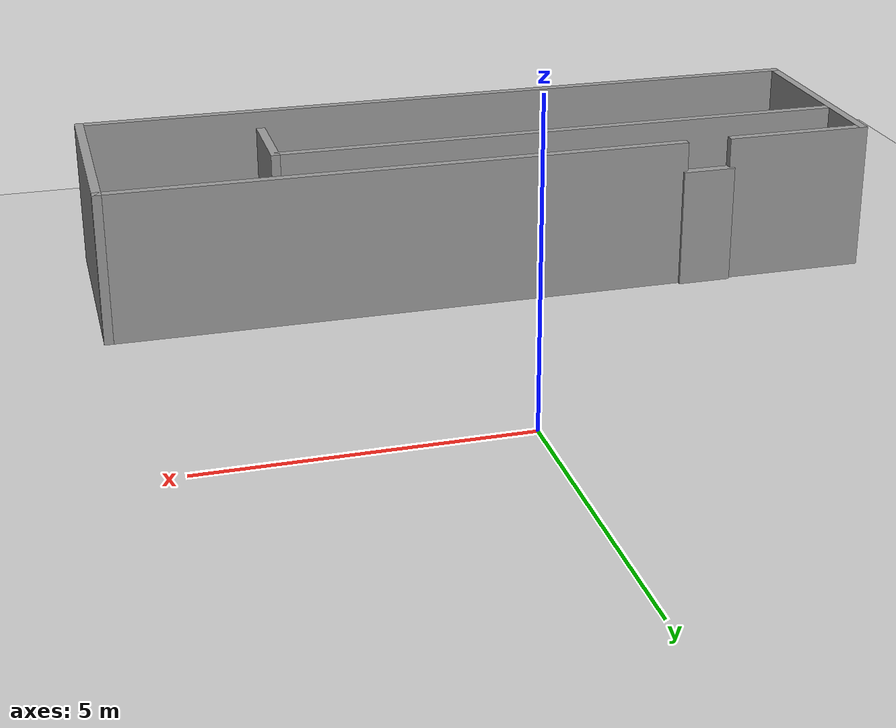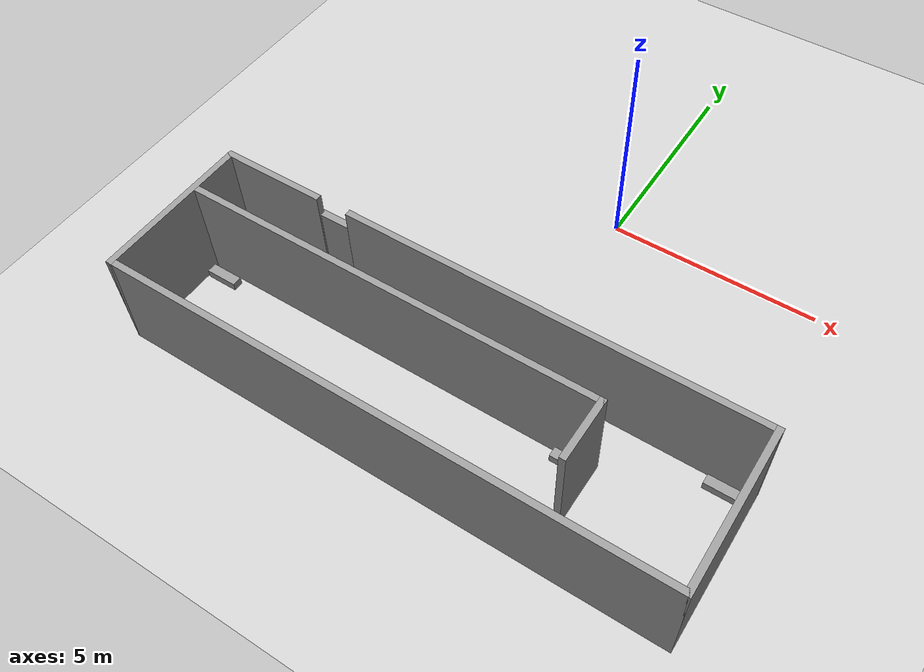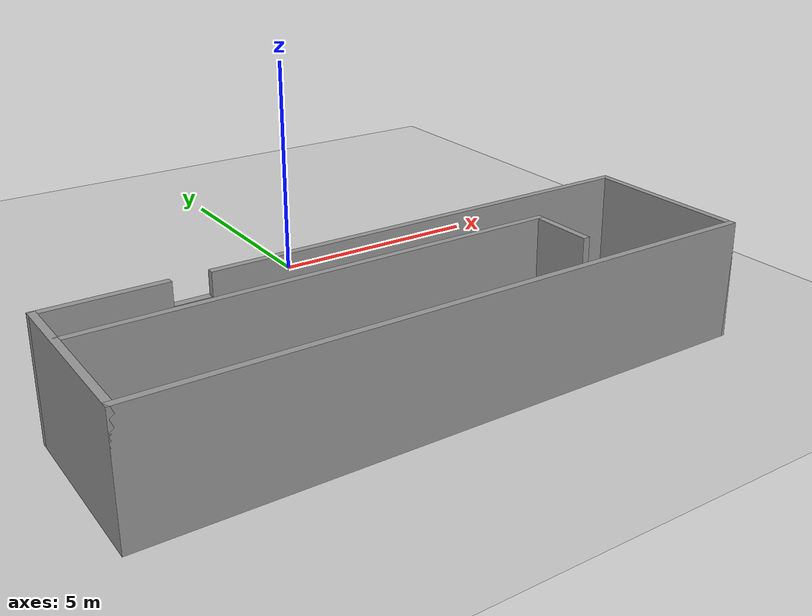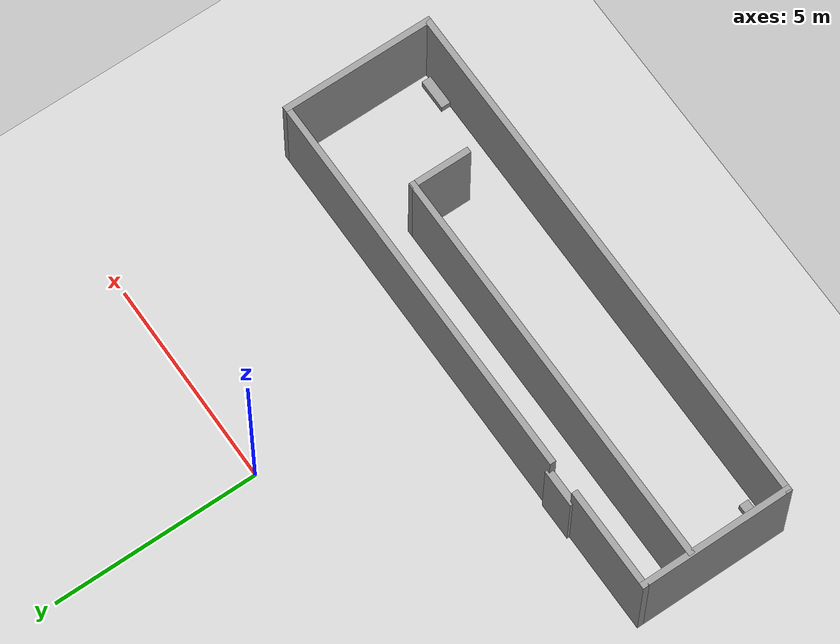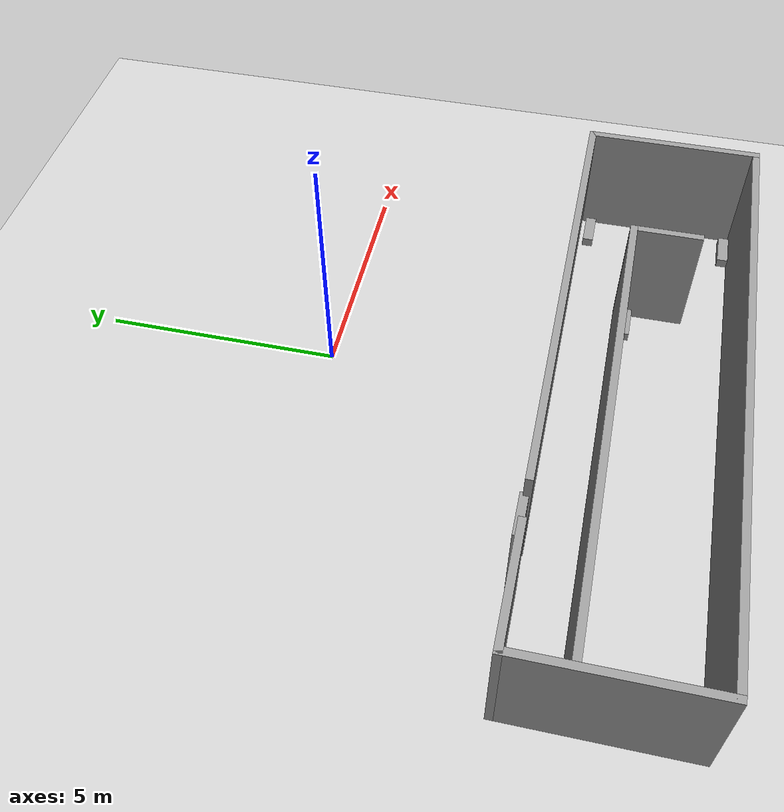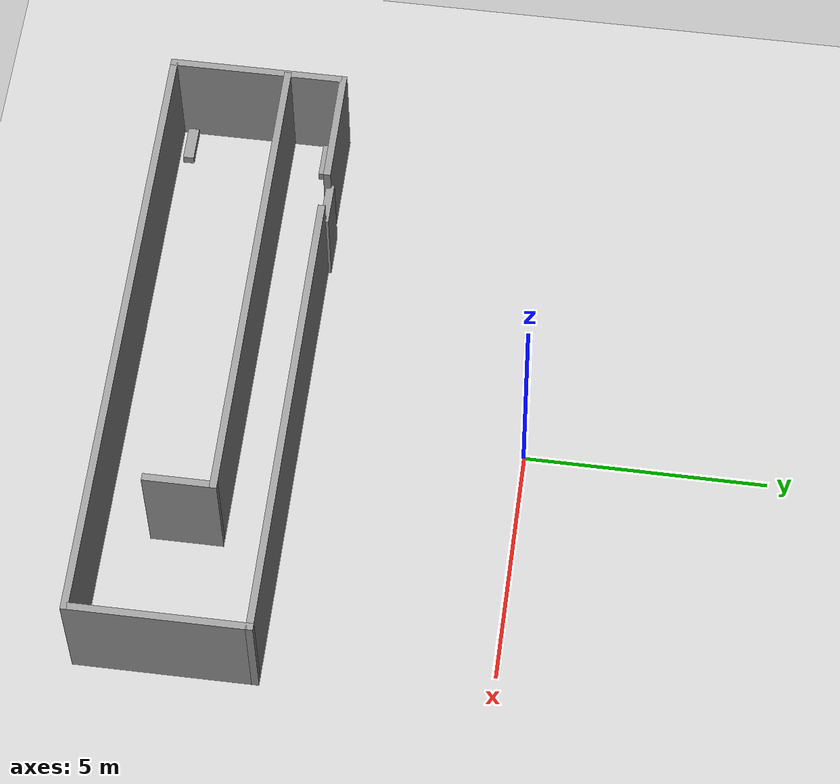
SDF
<sdf version="1.7">
 <world name="default">
  <light name="sun" type="directional">
   <pose>0 0 10 0 -0 0</pose>
   <diffuse>0.8 0.8 0.8 1</diffuse>
   <specular>0.2 0.2 0.2 1</specular>
   <attenuation>
    <range>1000</range>
    <constant>0.9</constant>
    <linear>0.01</linear>
    <quadratic>0.001</quadratic>
   </attenuation>
   <direction>-0.5 0.1 -0.9</direction>
   <spot><inner_angle>0</inner_angle><outer_angle>0</outer_angle><falloff>0</falloff></spot>
  </light>
  <model name="ground_plane">
   <static>1</static>
   <link name="link">
    <collision name="collision">
     <geometry><plane><normal>0 0 1</normal><size>100 100</size></plane></geometry>
     <surface>
      <contact><collide_bitmask>65535</collide_bitmask></contact>
      <friction><ode><mu>100</mu><mu2>50</mu2></ode></friction>
     </surface>
    </collision>
    <visual name="visual">
     <cast_shadows>0</cast_shadows>
     <geometry><plane><normal>0 0 1</normal><size>100 100</size></plane></geometry>
     <material>
      <script><uri>file://media/materials/scripts/gazebo.material</uri><name>Gazebo/Grey</name></script>
     </material>
    </visual>
   </link>
  </model>
  <gravity>0 0 -9.8</gravity>
  <magnetic_field>6e-06 2.3e-05 -4.2e-05</magnetic_field>
  <atmosphere type="adiabatic"/>
  <physics type="ode">
   <max_step_size>0.001</max_step_size>
   <real_time_factor>1</real_time_factor>
   <real_time_update_rate>1000</real_time_update_rate>
  </physics>
  <scene><ambient>0.4 0.4 0.4 1</ambient><background>0.7 0.7 0.7 1</background><shadows>1</shadows></scene>
  <spherical_coordinates>
   <surface_model>EARTH_WGS84</surface_model>
   <latitude_deg>0</latitude_deg>
   <longitude_deg>0</longitude_deg>
   <elevation>0</elevation>
   <heading_deg>0</heading_deg>
  </spherical_coordinates>
  <model name="heloo">
   <pose>-0.773667 -5.49085 0 0 -0 0</pose>
   <link name="Door_0">
    <collision name="Door_0_Collision">
     <geometry><box><size>0.9 0.17 2</size></box></geometry>
     <pose>0 0 1 0 -0 0</pose>
    </collision>
    <visual name="Door_0_Visual">
     <pose>0 0 1 0 -0 0</pose>
     <geometry><box><size>0.9 0.17 2</size></box></geometry>
     <material>
      <script><uri>file://media/materials/scripts/gazebo.material</uri><name>Gazebo/Grey</name></script>
     </material>
    </visual>
    <pose>-3.62358 0.842506 0 0 -0 0</pose>
   </link>
   <link name="Wall_0">
    <collision name="Wall_0_Collision">
     <geometry><box><size>2.5 0.15 2.5</size></box></geometry>
     <pose>0 0 1.25 0 -0 0</pose>
    </collision>
    <visual name="Wall_0_Visual">
     <pose>0 0 1.25 0 -0 0</pose>
     <geometry><box><size>2.5 0.15 2.5</size></box></geometry>
     <material>
      <script><uri>file://media/materials/scripts/gazebo.material</uri><name>Gazebo/Grey</name></script>
      <ambient>1 1 1 1</ambient>
     </material>
     <meta><layer>0</layer></meta>
    </visual>
    <pose>-5.25 0.7925 0 0 -0 3.14159</pose>
   </link>
   <link name="Wall_1">
    <collision name="Wall_1_Collision">
     <geometry><box><size>3.75 0.15 2.5</size></box></geometry>
     <pose>0 0 1.25 0 -0 0</pose>
    </collision>
    <visual name="Wall_1_Visual">
     <pose>0 0 1.25 0 -0 0</pose>
     <geometry><box><size>3.75 0.15 2.5</size></box></geometry>
     <material>
      <script><uri>file://media/materials/scripts/gazebo.material</uri><name>Gazebo/Grey</name></script>
      <ambient>1 1 1 1</ambient>
     </material>
     <meta><layer>0</layer></meta>
    </visual>
    <pose>-6.425 -1.0075 0 0 -0 -1.5708</pose>
   </link>
   <link name="Wall_2">
    <collision name="Wall_2_Collision">
     <geometry><box><size>13 0.15 2.5</size></box></geometry>
     <pose>0 0 1.25 0 -0 0</pose>
    </collision>
    <visual name="Wall_2_Visual">
     <pose>0 0 1.25 0 -0 0</pose>
     <geometry><box><size>13 0.15 2.5</size></box></geometry>
     <material>
      <script><uri>file://media/materials/scripts/gazebo.material</uri><name>Gazebo/Grey</name></script>
      <ambient>1 1 1 1</ambient>
     </material>
     <meta><layer>0</layer></meta>
    </visual>
    <pose>-0 -2.8075 0 0 -0 0</pose>
   </link>
   <link name="Wall_3">
    <collision name="Wall_3_Collision">
     <geometry><box><size>3.75 0.15 2.5</size></box></geometry>
     <pose>0 0 1.25 0 -0 0</pose>
    </collision>
    <visual name="Wall_3_Visual">
     <pose>0 0 1.25 0 -0 0</pose>
     <geometry><box><size>3.75 0.15 2.5</size></box></geometry>
     <material>
      <script><uri>file://media/materials/scripts/gazebo.material</uri><name>Gazebo/Grey</name></script>
      <ambient>1 1 1 1</ambient>
     </material>
     <meta><layer>0</layer></meta>
    </visual>
    <pose>6.425 -1.0075 0 0 -0 1.5708</pose>
   </link>
   <link name="Wall_4">
    <collision name="Wall_4_Collision">
     <geometry><box><size>9.75 0.15 2.5</size></box></geometry>
     <pose>0 0 1.25 0 -0 0</pose>
    </collision>
    <visual name="Wall_4_Visual">
     <pose>0 0 1.25 0 -0 0</pose>
     <geometry><box><size>9.75 0.15 2.5</size></box></geometry>
     <material>
      <script><uri>file://media/materials/scripts/gazebo.material</uri><name>Gazebo/Grey</name></script>
      <ambient>1 1 1 1</ambient>
     </material>
     <meta><layer>0</layer></meta>
    </visual>
    <pose>1.625 0.7925 0 0 -0 3.14159</pose>
   </link>
   <link name="Wall_6">
    <collision name="Wall_6_Collision">
     <geometry><box><size>10 0.15 2.5</size></box></geometry>
     <pose>0 0 1.25 0 -0 0</pose>
    </collision>
    <visual name="Wall_6_Visual">
     <pose>0 0 1.25 0 -0 0</pose>
     <geometry><box><size>10 0.15 2.5</size></box></geometry>
     <material>
      <script><uri>file://media/materials/scripts/gazebo.material</uri><name>Gazebo/Grey</name></script>
      <ambient>1 1 1 1</ambient>
     </material>
     <meta><layer>0</layer></meta>
    </visual>
    <pose>-1.45969 -0.384781 0 0 -0 0</pose>
   </link>
   <link name="Wall_7">
    <collision name="Wall_7_Collision">
     <geometry><box><size>1.5 0.15 2.5</size></box></geometry>
     <pose>0 0 1.25 0 -0 0</pose>
    </collision>
    <visual name="Wall_7_Visual">
     <pose>0 0 1.25 0 -0 0</pose>
     <geometry><box><size>1.5 0.15 2.5</size></box></geometry>
     <material>
      <script><uri>file://media/materials/scripts/gazebo.material</uri><name>Gazebo/Grey</name></script>
      <ambient>1 1 1 1</ambient>
     </material>
     <meta><layer>0</layer></meta>
    </visual>
    <pose>3.46531 -1.05978 0 0 -0 -1.5708</pose>
   </link>
   <static>1</static>
  </model>
  <model name="unit_box">
   <pose>5.09001 -4.97698 0.099821 0 0 -9e-05</pose>
   <link name="link">
    <inertial>
     <mass>1</mass>
     <inertia>
      <ixx>0.166667</ixx>
      <ixy>0</ixy>
      <ixz>0</ixz>
      <iyy>0.166667</iyy>
      <iyz>0</iyz>
      <izz>0.166667</izz>
     </inertia>
    </inertial>
    <collision name="collision">
     <geometry><box><size>0.751149 0.230369 0.199642</size></box></geometry>
    </collision>
    <visual name="visual">
     <geometry><box><size>0.751149 0.230369 0.199642</size></box></geometry>
     <material>
      <script><name>Gazebo/Grey</name><uri>file://media/materials/scripts/gazebo.material</uri></script>
     </material>
    </visual>
   </link>
  </model>
  <model name="unit_box_clone">
   <pose>5.04343 -8.10817 0.099821 0 0 -1e-05</pose>
   <link name="link">
    <inertial>
     <mass>1</mass>
     <inertia>
      <ixx>0.166667</ixx>
      <ixy>0</ixy>
      <ixz>0</ixz>
      <iyy>0.166667</iyy>
      <iyz>0</iyz>
      <izz>0.166667</izz>
     </inertia>
    </inertial>
    <collision name="collision"><geometry><box><size>0.75115 0.230369 0.199642</size></box></geometry></collision>
    <visual name="visual">
     <geometry><box><size>0.75115 0.230369 0.199642</size></box></geometry>
     <material>
      <script><name>Gazebo/Grey</name><uri>file://media/materials/scripts/gazebo.material</uri></script>
     </material>
    </visual>
   </link>
  </model>
  <model name="unit_box_clone_0">
   <pose>-6.72046 -8.01305 0.099821 0 -0 -9e-05</pose>
   <link name="link">
    <inertial>
     <mass>1</mass>
     <inertia>
      <ixx>0.166667</ixx>
      <ixy>0</ixy>
      <ixz>0</ixz>
      <iyy>0.166667</iyy>
      <iyz>0</iyz>
      <izz>0.166667</izz>
     </inertia>
    </inertial>
    <collision name="collision"><geometry><box><size>0.75115 0.230369 0.199642</size></box></geometry></collision>
    <visual name="visual">
     <geometry><box><size>0.75115 0.230369 0.199642</size></box></geometry>
     <material>
      <script><name>Gazebo/Grey</name><uri>file://media/materials/scripts/gazebo.material</uri></script>
     </material>
    </visual>
   </link>
  </model>
  <model name="unit_box_clone_1">
   <pose>2.24106 -6.08058 0.099821 -0 -0 -8.6e-05</pose>
   <link name="link">
    <inertial>
     <mass>1</mass>
     <inertia>
      <ixx>0.166667</ixx>
      <ixy>0</ixy>
      <ixz>0</ixz>
      <iyy>0.166667</iyy>
      <iyz>0</iyz>
      <izz>0.166667</izz>
     </inertia>
    </inertial>
    <collision name="collision"><geometry><box><size>0.75115 0.230369 0.199642</size></box></geometry></collision>
    <visual name="visual">
     <geometry><box><size>0.75115 0.230369 0.199642</size></box></geometry>
     <material>
      <script><name>Gazebo/Grey</name><uri>file://media/materials/scripts/gazebo.material</uri></script>
     </material>
    </visual>
   </link>
  </model>
  <model name="unit_box_clone_2">
   <pose>-6.7073 -6.16956 0.099821 0 -0 -9e-05</pose>
   <link name="link">
    <inertial>
     <mass>1</mass>
     <inertia>
      <ixx>0.166667</ixx>
      <ixy>0</ixy>
      <ixz>0</ixz>
      <iyy>0.166667</iyy>
      <iyz>0</iyz>
      <izz>0.166667</izz>
     </inertia>
    </inertial>
    <collision name="collision"><geometry><box><size>0.75115 0.230369 0.199642</size></box></geometry></collision>
    <visual name="visual">
     <geometry><box><size>0.75115 0.230369 0.199642</size></box></geometry>
     <material>
      <script><name>Gazebo/Grey</name><uri>file://media/materials/scripts/gazebo.material</uri></script>
     </material>
    </visual>
   </link>
  </model>
  <model name="unit_box_clone_3">
   <pose>-6.65022 -5.04963 0.099821 0 -0 -9e-05</pose>
   <link name="link">
    <inertial>
     <mass>1</mass>
     <inertia>
      <ixx>0.166667</ixx>
      <ixy>0</ixy>
      <ixz>0</ixz>
      <iyy>0.166667</iyy>
      <iyz>0</iyz>
      <izz>0.166667</izz>
     </inertia>
    </inertial>
    <collision name="collision"><geometry><box><size>0.75115 0.230369 0.199642</size></box></geometry></collision>
    <visual name="visual">
     <geometry><box><size>0.75115 0.230369 0.199642</size></box></geometry>
     <material>
      <script><name>Gazebo/Grey</name><uri>file://media/materials/scripts/gazebo.material</uri></script>
     </material>
    </visual>
   </link>
  </model>
  <plugin name="libgtec_uwb_plugin" filename="libgtec_uwb_plugin.so">
   <update_rate>25</update_rate>
   <nlosSoftWallWidth>0.25</nlosSoftWallWidth>
   <tag_z_offset>1.5</tag_z_offset>
   <tag_link>tag_0</tag_link>
   <anchor_prefix>uwb_anchor</anchor_prefix>
   <all_los>false</all_los>
   <tag_id>0</tag_id>
  </plugin>
 </world>
</sdf>
